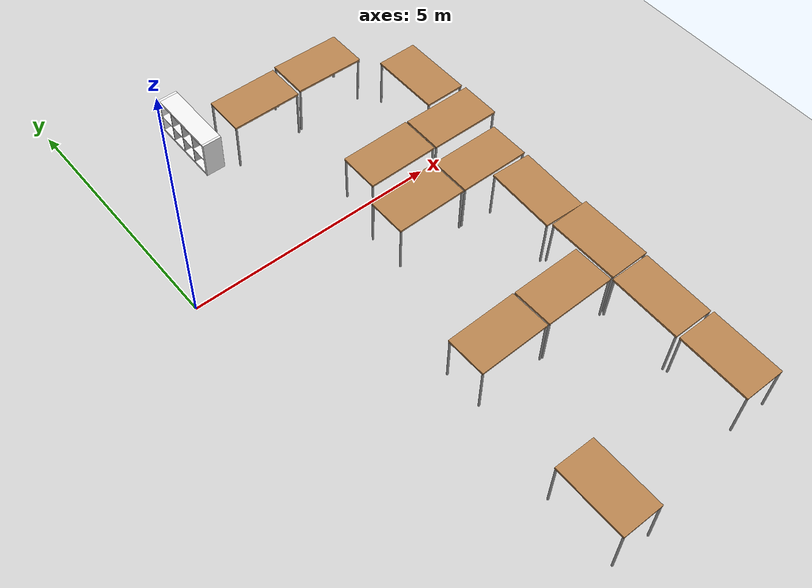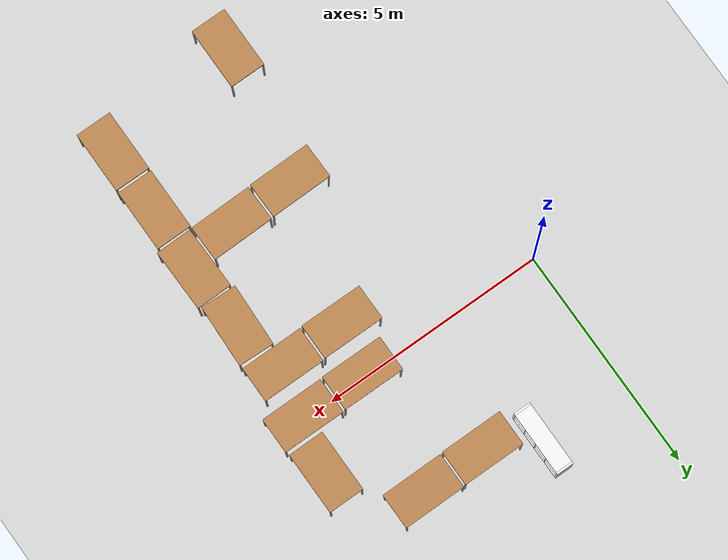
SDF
<sdf version="1.6">
 <world name="default">
  <model name="ground_plane">
   <static>1</static>
   <link name="link">
    <collision name="collision">
     <geometry><plane><normal>0 0 1</normal><size>100 100</size></plane></geometry>
     <surface><friction><ode><mu>100</mu><mu2>50</mu2></ode></friction></surface>
    </collision>
    <visual name="visual">
     <cast_shadows>0</cast_shadows>
     <geometry><plane><normal>0 0 1</normal><size>100 100</size></plane></geometry>
     <material>
      <script><uri>file://media/materials/scripts/gazebo.material</uri><name>Gazebo/Grey</name></script>
     </material>
    </visual>
   </link>
  </model>
  <model name="bookcase">
   <link name="dummy_link">
    <inertial>
     <pose>0 0 0.335152 0 -0 0</pose>
     <mass>33</mass>
     <inertia>
      <ixx>7.54617</ixx>
      <ixy>0</ixy>
      <ixz>0</ixz>
      <iyy>2.12412</iyy>
      <iyz>1.60768e-16</iyz>
      <izz>5.42205</izz>
     </inertia>
    </inertial>
    <collision name="dummy_link_fixed_joint_lump__bookcase_bottom_link_collision_1">
     <pose>0 0 0.025 0 -0 0</pose>
     <geometry><box><size>0.39 1.39 0.05</size></box></geometry>
    </collision>
    <collision name="dummy_link_fixed_joint_lump__separation_4_link_collision_2">
     <pose>0 -0.345 0.21875 0 -0 0</pose>
     <geometry><box><size>0.39 0.015 0.33</size></box></geometry>
    </collision>
    <collision name="dummy_link_fixed_joint_lump__separation_5_link_collision_3">
     <pose>0 0 0.21875 0 -0 0</pose>
     <geometry><box><size>0.39 0.015 0.33</size></box></geometry>
    </collision>
    <collision name="dummy_link_fixed_joint_lump__separation_6_link_collision_4">
     <pose>0 0.345 0.21875 0 -0 0</pose>
     <geometry><box><size>0.39 0.015 0.33</size></box></geometry>
    </collision>
    <collision name="dummy_link_fixed_joint_lump__bookcase_left_collision_5">
     <pose>0 -0.72 0.395 0 -0 0</pose>
     <geometry><box><size>0.39 0.05 0.79</size></box></geometry>
    </collision>
    <collision name="dummy_link_fixed_joint_lump__bookcase_middle_collision_6">
     <pose>0 0 0.395 0 -0 0</pose>
     <geometry><box><size>0.39 1.39 0.015</size></box></geometry>
    </collision>
    <collision name="dummy_link_fixed_joint_lump__bookcase_right_collision_7">
     <pose>0 0.72 0.395 0 -0 0</pose>
     <geometry><box><size>0.39 0.05 0.79</size></box></geometry>
    </collision>
    <collision name="dummy_link_fixed_joint_lump__bookcase_top_link_collision_8">
     <pose>0 0 0.765 0 -0 0</pose>
     <geometry><box><size>0.39 1.39 0.05</size></box></geometry>
    </collision>
    <collision name="dummy_link_fixed_joint_lump__separation_1_link_collision_9">
     <pose>0 -0.345 0.57125 0 -0 0</pose>
     <geometry><box><size>0.39 0.015 0.33</size></box></geometry>
    </collision>
    <collision name="dummy_link_fixed_joint_lump__separation_2_link_collision_10">
     <pose>0 0 0.57125 0 -0 0</pose>
     <geometry><box><size>0.39 0.015 0.33</size></box></geometry>
    </collision>
    <collision name="dummy_link_fixed_joint_lump__separation_3_link_collision_11">
     <pose>0 0.345 0.57125 0 -0 0</pose>
     <geometry><box><size>0.39 0.015 0.33</size></box></geometry>
    </collision>
    <visual name="dummy_link_fixed_joint_lump__bookcase_bottom_link_visual_1">
     <pose>0 0 0.025 0 -0 0</pose>
     <geometry><box><size>0.39 1.39 0.05</size></box></geometry>
     <material>
      <script><name>Gazebo/White</name><uri>file://media/materials/scripts/gazebo.material</uri></script>
     </material>
    </visual>
    <visual name="dummy_link_fixed_joint_lump__separation_4_link_visual_2">
     <pose>0 -0.345 0.21875 0 -0 0</pose>
     <geometry><box><size>0.39 0.015 0.3375</size></box></geometry>
    </visual>
    <visual name="dummy_link_fixed_joint_lump__separation_5_link_visual_3">
     <pose>0 0 0.21875 0 -0 0</pose>
     <geometry><box><size>0.39 0.015 0.3375</size></box></geometry>
    </visual>
    <visual name="dummy_link_fixed_joint_lump__separation_6_link_visual_4">
     <pose>0 0.345 0.21875 0 -0 0</pose>
     <geometry><box><size>0.39 0.015 0.3375</size></box></geometry>
    </visual>
    <visual name="dummy_link_fixed_joint_lump__bookcase_left_visual_5">
     <pose>0 -0.72 0.395 0 -0 0</pose>
     <geometry><box><size>0.39 0.05 0.79</size></box></geometry>
     <material>
      <script><name>Gazebo/White</name><uri>file://media/materials/scripts/gazebo.material</uri></script>
     </material>
    </visual>
    <visual name="dummy_link_fixed_joint_lump__bookcase_middle_visual_6">
     <pose>0 0 0.395 0 -0 0</pose>
     <geometry><box><size>0.39 1.39 0.015</size></box></geometry>
     <material>
      <script><name>Gazebo/White</name><uri>file://media/materials/scripts/gazebo.material</uri></script>
     </material>
    </visual>
    <visual name="dummy_link_fixed_joint_lump__bookcase_right_visual_7">
     <pose>0 0.72 0.395 0 -0 0</pose>
     <geometry><box><size>0.39 0.05 0.79</size></box></geometry>
     <material>
      <script><name>Gazebo/White</name><uri>file://media/materials/scripts/gazebo.material</uri></script>
     </material>
    </visual>
    <visual name="dummy_link_fixed_joint_lump__bookcase_top_link_visual_8">
     <pose>0 0 0.765 0 -0 0</pose>
     <geometry><box><size>0.39 1.39 0.05</size></box></geometry>
     <material>
      <script><name>Gazebo/White</name><uri>file://media/materials/scripts/gazebo.material</uri></script>
     </material>
    </visual>
    <visual name="dummy_link_fixed_joint_lump__separation_1_link_visual_9">
     <pose>0 -0.345 0.57125 0 -0 0</pose>
     <geometry><box><size>0.39 0.015 0.3375</size></box></geometry>
    </visual>
    <visual name="dummy_link_fixed_joint_lump__separation_2_link_visual_10">
     <pose>0 0 0.57125 0 -0 0</pose>
     <geometry><box><size>0.39 0.015 0.3375</size></box></geometry>
    </visual>
    <visual name="dummy_link_fixed_joint_lump__separation_3_link_visual_11">
     <pose>0 0.345 0.57125 0 -0 0</pose>
     <geometry><box><size>0.39 0.015 0.3375</size></box></geometry>
    </visual>
   </link>
   <pose>2.03773 3.11611 0 0 0 -0.003851</pose>
  </model>
  <model name="table">
   <static>0</static>
   <link name="link">
    <collision name="surface">
     <pose>0 0 1 0 -0 0</pose>
     <geometry><box><size>1.5 0.8 0.03</size></box></geometry>
     <surface><friction><ode><mu>0.6</mu><mu2>0.6</mu2></ode></friction></surface>
    </collision>
    <visual name="visual1">
     <pose>0 0 1 0 -0 0</pose>
     <geometry><box><size>1.4 0.8 0.04</size></box></geometry>
     <material>
      <script><uri>file://media/materials/scripts/gazebo.material</uri><name>Gazebo/Wood</name></script>
     </material>
    </visual>
    <collision name="front_left_leg">
     <pose>0.68 0.38 0.5 0 -0 0</pose>
     <geometry><cylinder><radius>0.02</radius><length>1</length></cylinder></geometry>
    </collision>
    <visual name="front_left_leg">
     <pose>0.68 0.38 0.5 0 -0 0</pose>
     <geometry><cylinder><radius>0.02</radius><length>1</length></cylinder></geometry>
     <material>
      <script><uri>file://media/materials/scripts/gazebo.material</uri><name>Gazebo/Grey</name></script>
     </material>
    </visual>
    <collision name="front_right_leg">
     <pose>0.68 -0.38 0.5 0 -0 0</pose>
     <geometry><cylinder><radius>0.02</radius><length>1</length></cylinder></geometry>
    </collision>
    <visual name="front_right_leg">
     <pose>0.68 -0.38 0.5 0 -0 0</pose>
     <geometry><cylinder><radius>0.02</radius><length>1</length></cylinder></geometry>
     <material>
      <script><uri>file://media/materials/scripts/gazebo.material</uri><name>Gazebo/Grey</name></script>
     </material>
    </visual>
    <collision name="back_right_leg">
     <pose>-0.68 -0.38 0.5 0 -0 0</pose>
     <geometry><cylinder><radius>0.02</radius><length>1</length></cylinder></geometry>
    </collision>
    <visual name="back_right_leg">
     <pose>-0.68 -0.38 0.5 0 -0 0</pose>
     <geometry><cylinder><radius>0.02</radius><length>1</length></cylinder></geometry>
     <material>
      <script><uri>file://media/materials/scripts/gazebo.material</uri><name>Gazebo/Grey</name></script>
     </material>
    </visual>
    <collision name="back_left_leg">
     <pose>-0.68 0.38 0.5 0 -0 0</pose>
     <geometry><cylinder><radius>0.02</radius><length>1</length></cylinder></geometry>
    </collision>
    <visual name="back_left_leg">
     <pose>-0.68 0.38 0.5 0 -0 0</pose>
     <geometry><cylinder><radius>0.02</radius><length>1</length></cylinder></geometry>
     <material>
      <script><uri>file://media/materials/scripts/gazebo.material</uri><name>Gazebo/Grey</name></script>
     </material>
    </visual>
    <inertial>
     <inertia><ixx>1</ixx><ixy>0</ixy><ixz>0</ixz><iyy>1</iyy><iyz>0</iyz><izz>1</izz></inertia>
     <mass>1</mass>
    </inertial>
   </link>
   <pose>4.5797 2.59981 0.015111 1e-06 0.021578 6e-06</pose>
  </model>
  <model name="table_clone">
   <static>0</static>
   <link name="link">
    <collision name="surface">
     <pose>0 0 1 0 -0 0</pose>
     <geometry><box><size>1.5 0.8 0.03</size></box></geometry>
     <surface><friction><ode><mu>0.6</mu><mu2>0.6</mu2></ode></friction></surface>
    </collision>
    <visual name="visual1">
     <pose>0 0 1 0 -0 0</pose>
     <geometry><box><size>1.4 0.8 0.04</size></box></geometry>
     <material>
      <script><uri>file://media/materials/scripts/gazebo.material</uri><name>Gazebo/Wood</name></script>
     </material>
    </visual>
    <collision name="front_left_leg">
     <pose>0.68 0.38 0.5 0 -0 0</pose>
     <geometry><cylinder><radius>0.02</radius><length>1</length></cylinder></geometry>
    </collision>
    <visual name="front_left_leg">
     <pose>0.68 0.38 0.5 0 -0 0</pose>
     <geometry><cylinder><radius>0.02</radius><length>1</length></cylinder></geometry>
     <material>
      <script><uri>file://media/materials/scripts/gazebo.material</uri><name>Gazebo/Grey</name></script>
     </material>
    </visual>
    <collision name="front_right_leg">
     <pose>0.68 -0.38 0.5 0 -0 0</pose>
     <geometry><cylinder><radius>0.02</radius><length>1</length></cylinder></geometry>
    </collision>
    <visual name="front_right_leg">
     <pose>0.68 -0.38 0.5 0 -0 0</pose>
     <geometry><cylinder><radius>0.02</radius><length>1</length></cylinder></geometry>
     <material>
      <script><uri>file://media/materials/scripts/gazebo.material</uri><name>Gazebo/Grey</name></script>
     </material>
    </visual>
    <collision name="back_right_leg">
     <pose>-0.68 -0.38 0.5 0 -0 0</pose>
     <geometry><cylinder><radius>0.02</radius><length>1</length></cylinder></geometry>
    </collision>
    <visual name="back_right_leg">
     <pose>-0.68 -0.38 0.5 0 -0 0</pose>
     <geometry><cylinder><radius>0.02</radius><length>1</length></cylinder></geometry>
     <material>
      <script><uri>file://media/materials/scripts/gazebo.material</uri><name>Gazebo/Grey</name></script>
     </material>
    </visual>
    <collision name="back_left_leg">
     <pose>-0.68 0.38 0.5 0 -0 0</pose>
     <geometry><cylinder><radius>0.02</radius><length>1</length></cylinder></geometry>
    </collision>
    <visual name="back_left_leg">
     <pose>-0.68 0.38 0.5 0 -0 0</pose>
     <geometry><cylinder><radius>0.02</radius><length>1</length></cylinder></geometry>
     <material>
      <script><uri>file://media/materials/scripts/gazebo.material</uri><name>Gazebo/Grey</name></script>
     </material>
    </visual>
    <inertial>
     <inertia><ixx>1</ixx><ixy>0</ixy><ixz>0</ixz><iyy>1</iyy><iyz>0</iyz><izz>1</izz></inertia>
     <mass>1</mass>
    </inertial>
   </link>
   <pose>3.15046 2.58459 3e-06 1e-06 5e-06 5e-06</pose>
  </model>
  <model name="table_clone_0">
   <static>0</static>
   <link name="link">
    <collision name="surface">
     <pose>0 0 1 0 -0 0</pose>
     <geometry><box><size>1.5 0.8 0.03</size></box></geometry>
     <surface><friction><ode><mu>0.6</mu><mu2>0.6</mu2></ode></friction></surface>
    </collision>
    <visual name="visual1">
     <pose>0 0 1 0 -0 0</pose>
     <geometry><box><size>1.4 0.8 0.04</size></box></geometry>
     <material>
      <script><uri>file://media/materials/scripts/gazebo.material</uri><name>Gazebo/Wood</name></script>
     </material>
    </visual>
    <collision name="front_left_leg">
     <pose>0.68 0.38 0.5 0 -0 0</pose>
     <geometry><cylinder><radius>0.02</radius><length>1</length></cylinder></geometry>
    </collision>
    <visual name="front_left_leg">
     <pose>0.68 0.38 0.5 0 -0 0</pose>
     <geometry><cylinder><radius>0.02</radius><length>1</length></cylinder></geometry>
     <material>
      <script><uri>file://media/materials/scripts/gazebo.material</uri><name>Gazebo/Grey</name></script>
     </material>
    </visual>
    <collision name="front_right_leg">
     <pose>0.68 -0.38 0.5 0 -0 0</pose>
     <geometry><cylinder><radius>0.02</radius><length>1</length></cylinder></geometry>
    </collision>
    <visual name="front_right_leg">
     <pose>0.68 -0.38 0.5 0 -0 0</pose>
     <geometry><cylinder><radius>0.02</radius><length>1</length></cylinder></geometry>
     <material>
      <script><uri>file://media/materials/scripts/gazebo.material</uri><name>Gazebo/Grey</name></script>
     </material>
    </visual>
    <collision name="back_right_leg">
     <pose>-0.68 -0.38 0.5 0 -0 0</pose>
     <geometry><cylinder><radius>0.02</radius><length>1</length></cylinder></geometry>
    </collision>
    <visual name="back_right_leg">
     <pose>-0.68 -0.38 0.5 0 -0 0</pose>
     <geometry><cylinder><radius>0.02</radius><length>1</length></cylinder></geometry>
     <material>
      <script><uri>file://media/materials/scripts/gazebo.material</uri><name>Gazebo/Grey</name></script>
     </material>
    </visual>
    <collision name="back_left_leg">
     <pose>-0.68 0.38 0.5 0 -0 0</pose>
     <geometry><cylinder><radius>0.02</radius><length>1</length></cylinder></geometry>
    </collision>
    <visual name="back_left_leg">
     <pose>-0.68 0.38 0.5 0 -0 0</pose>
     <geometry><cylinder><radius>0.02</radius><length>1</length></cylinder></geometry>
     <material>
      <script><uri>file://media/materials/scripts/gazebo.material</uri><name>Gazebo/Grey</name></script>
     </material>
    </visual>
    <inertial>
     <inertia><ixx>1</ixx><ixy>0</ixy><ixz>0</ixz><iyy>1</iyy><iyz>0</iyz><izz>1</izz></inertia>
     <mass>1</mass>
    </inertial>
   </link>
   <pose>5.67387 0.001595 0 -6e-06 -4e-06 -0.002721</pose>
  </model>
  <model name="table_clone_1">
   <static>0</static>
   <link name="link">
    <collision name="surface">
     <pose>0 0 1 0 -0 0</pose>
     <geometry><box><size>1.5 0.8 0.03</size></box></geometry>
     <surface><friction><ode><mu>0.6</mu><mu2>0.6</mu2></ode></friction></surface>
    </collision>
    <visual name="visual1">
     <pose>0 0 1 0 -0 0</pose>
     <geometry><box><size>1.4 0.8 0.04</size></box></geometry>
     <material>
      <script><uri>file://media/materials/scripts/gazebo.material</uri><name>Gazebo/Wood</name></script>
     </material>
    </visual>
    <collision name="front_left_leg">
     <pose>0.68 0.38 0.5 0 -0 0</pose>
     <geometry><cylinder><radius>0.02</radius><length>1</length></cylinder></geometry>
    </collision>
    <visual name="front_left_leg">
     <pose>0.68 0.38 0.5 0 -0 0</pose>
     <geometry><cylinder><radius>0.02</radius><length>1</length></cylinder></geometry>
     <material>
      <script><uri>file://media/materials/scripts/gazebo.material</uri><name>Gazebo/Grey</name></script>
     </material>
    </visual>
    <collision name="front_right_leg">
     <pose>0.68 -0.38 0.5 0 -0 0</pose>
     <geometry><cylinder><radius>0.02</radius><length>1</length></cylinder></geometry>
    </collision>
    <visual name="front_right_leg">
     <pose>0.68 -0.38 0.5 0 -0 0</pose>
     <geometry><cylinder><radius>0.02</radius><length>1</length></cylinder></geometry>
     <material>
      <script><uri>file://media/materials/scripts/gazebo.material</uri><name>Gazebo/Grey</name></script>
     </material>
    </visual>
    <collision name="back_right_leg">
     <pose>-0.68 -0.38 0.5 0 -0 0</pose>
     <geometry><cylinder><radius>0.02</radius><length>1</length></cylinder></geometry>
    </collision>
    <visual name="back_right_leg">
     <pose>-0.68 -0.38 0.5 0 -0 0</pose>
     <geometry><cylinder><radius>0.02</radius><length>1</length></cylinder></geometry>
     <material>
      <script><uri>file://media/materials/scripts/gazebo.material</uri><name>Gazebo/Grey</name></script>
     </material>
    </visual>
    <collision name="back_left_leg">
     <pose>-0.68 0.38 0.5 0 -0 0</pose>
     <geometry><cylinder><radius>0.02</radius><length>1</length></cylinder></geometry>
    </collision>
    <visual name="back_left_leg">
     <pose>-0.68 0.38 0.5 0 -0 0</pose>
     <geometry><cylinder><radius>0.02</radius><length>1</length></cylinder></geometry>
     <material>
      <script><uri>file://media/materials/scripts/gazebo.material</uri><name>Gazebo/Grey</name></script>
     </material>
    </visual>
    <inertial>
     <inertia><ixx>1</ixx><ixy>0</ixy><ixz>0</ixz><iyy>1</iyy><iyz>0</iyz><izz>1</izz></inertia>
     <mass>1</mass>
    </inertial>
   </link>
   <pose>4.24461 -0.004796 0.015108 -2e-06 -0.021582 -0.002718</pose>
  </model>
  <model name="table_clone_2">
   <static>0</static>
   <link name="link">
    <collision name="surface">
     <pose>0 0 1 0 -0 0</pose>
     <geometry><box><size>1.5 0.8 0.03</size></box></geometry>
     <surface><friction><ode><mu>0.6</mu><mu2>0.6</mu2></ode></friction></surface>
    </collision>
    <visual name="visual1">
     <pose>0 0 1 0 -0 0</pose>
     <geometry><box><size>1.4 0.8 0.04</size></box></geometry>
     <material>
      <script><uri>file://media/materials/scripts/gazebo.material</uri><name>Gazebo/Wood</name></script>
     </material>
    </visual>
    <collision name="front_left_leg">
     <pose>0.68 0.38 0.5 0 -0 0</pose>
     <geometry><cylinder><radius>0.02</radius><length>1</length></cylinder></geometry>
    </collision>
    <visual name="front_left_leg">
     <pose>0.68 0.38 0.5 0 -0 0</pose>
     <geometry><cylinder><radius>0.02</radius><length>1</length></cylinder></geometry>
     <material>
      <script><uri>file://media/materials/scripts/gazebo.material</uri><name>Gazebo/Grey</name></script>
     </material>
    </visual>
    <collision name="front_right_leg">
     <pose>0.68 -0.38 0.5 0 -0 0</pose>
     <geometry><cylinder><radius>0.02</radius><length>1</length></cylinder></geometry>
    </collision>
    <visual name="front_right_leg">
     <pose>0.68 -0.38 0.5 0 -0 0</pose>
     <geometry><cylinder><radius>0.02</radius><length>1</length></cylinder></geometry>
     <material>
      <script><uri>file://media/materials/scripts/gazebo.material</uri><name>Gazebo/Grey</name></script>
     </material>
    </visual>
    <collision name="back_right_leg">
     <pose>-0.68 -0.38 0.5 0 -0 0</pose>
     <geometry><cylinder><radius>0.02</radius><length>1</length></cylinder></geometry>
    </collision>
    <visual name="back_right_leg">
     <pose>-0.68 -0.38 0.5 0 -0 0</pose>
     <geometry><cylinder><radius>0.02</radius><length>1</length></cylinder></geometry>
     <material>
      <script><uri>file://media/materials/scripts/gazebo.material</uri><name>Gazebo/Grey</name></script>
     </material>
    </visual>
    <collision name="back_left_leg">
     <pose>-0.68 0.38 0.5 0 -0 0</pose>
     <geometry><cylinder><radius>0.02</radius><length>1</length></cylinder></geometry>
    </collision>
    <visual name="back_left_leg">
     <pose>-0.68 0.38 0.5 0 -0 0</pose>
     <geometry><cylinder><radius>0.02</radius><length>1</length></cylinder></geometry>
     <material>
      <script><uri>file://media/materials/scripts/gazebo.material</uri><name>Gazebo/Grey</name></script>
     </material>
    </visual>
    <inertial>
     <inertia><ixx>1</ixx><ixy>0</ixy><ixz>0</ixz><iyy>1</iyy><iyz>0</iyz><izz>1</izz></inertia>
     <mass>1</mass>
    </inertial>
   </link>
   <pose>5.94644 1.1813 -2e-06 0 1e-06 -1.56858</pose>
  </model>
  <model name="table_0">
   <static>0</static>
   <link name="link">
    <collision name="surface">
     <pose>0 0 1 0 -0 0</pose>
     <geometry><box><size>1.5 0.8 0.03</size></box></geometry>
     <surface><friction><ode><mu>0.6</mu><mu2>0.6</mu2></ode></friction></surface>
    </collision>
    <visual name="visual1">
     <pose>0 0 1 0 -0 0</pose>
     <geometry><box><size>1.4 0.8 0.04</size></box></geometry>
     <material>
      <script><uri>file://media/materials/scripts/gazebo.material</uri><name>Gazebo/Wood</name></script>
     </material>
    </visual>
    <collision name="front_left_leg">
     <pose>0.68 0.38 0.5 0 -0 0</pose>
     <geometry><cylinder><radius>0.02</radius><length>1</length></cylinder></geometry>
    </collision>
    <visual name="front_left_leg">
     <pose>0.68 0.38 0.5 0 -0 0</pose>
     <geometry><cylinder><radius>0.02</radius><length>1</length></cylinder></geometry>
     <material>
      <script><uri>file://media/materials/scripts/gazebo.material</uri><name>Gazebo/Grey</name></script>
     </material>
    </visual>
    <collision name="front_right_leg">
     <pose>0.68 -0.38 0.5 0 -0 0</pose>
     <geometry><cylinder><radius>0.02</radius><length>1</length></cylinder></geometry>
    </collision>
    <visual name="front_right_leg">
     <pose>0.68 -0.38 0.5 0 -0 0</pose>
     <geometry><cylinder><radius>0.02</radius><length>1</length></cylinder></geometry>
     <material>
      <script><uri>file://media/materials/scripts/gazebo.material</uri><name>Gazebo/Grey</name></script>
     </material>
    </visual>
    <collision name="back_right_leg">
     <pose>-0.68 -0.38 0.5 0 -0 0</pose>
     <geometry><cylinder><radius>0.02</radius><length>1</length></cylinder></geometry>
    </collision>
    <visual name="back_right_leg">
     <pose>-0.68 -0.38 0.5 0 -0 0</pose>
     <geometry><cylinder><radius>0.02</radius><length>1</length></cylinder></geometry>
     <material>
      <script><uri>file://media/materials/scripts/gazebo.material</uri><name>Gazebo/Grey</name></script>
     </material>
    </visual>
    <collision name="back_left_leg">
     <pose>-0.68 0.38 0.5 0 -0 0</pose>
     <geometry><cylinder><radius>0.02</radius><length>1</length></cylinder></geometry>
    </collision>
    <visual name="back_left_leg">
     <pose>-0.68 0.38 0.5 0 -0 0</pose>
     <geometry><cylinder><radius>0.02</radius><length>1</length></cylinder></geometry>
     <material>
      <script><uri>file://media/materials/scripts/gazebo.material</uri><name>Gazebo/Grey</name></script>
     </material>
    </visual>
    <inertial>
     <inertia><ixx>1</ixx><ixy>0</ixy><ixz>0</ixz><iyy>1</iyy><iyz>0</iyz><izz>1</izz></inertia>
     <mass>1</mass>
    </inertial>
   </link>
   <pose>5.41247 -1.0623 0 -6e-06 -4e-06 -8e-06</pose>
  </model>
  <model name="table_0_clone">
   <static>0</static>
   <link name="link">
    <collision name="surface">
     <pose>0 0 1 0 -0 0</pose>
     <geometry><box><size>1.5 0.8 0.03</size></box></geometry>
     <surface><friction><ode><mu>0.6</mu><mu2>0.6</mu2></ode></friction></surface>
    </collision>
    <visual name="visual1">
     <pose>0 0 1 0 -0 0</pose>
     <geometry><box><size>1.4 0.8 0.04</size></box></geometry>
     <material>
      <script><uri>file://media/materials/scripts/gazebo.material</uri><name>Gazebo/Wood</name></script>
     </material>
    </visual>
    <collision name="front_left_leg">
     <pose>0.68 0.38 0.5 0 -0 0</pose>
     <geometry><cylinder><radius>0.02</radius><length>1</length></cylinder></geometry>
    </collision>
    <visual name="front_left_leg">
     <pose>0.68 0.38 0.5 0 -0 0</pose>
     <geometry><cylinder><radius>0.02</radius><length>1</length></cylinder></geometry>
     <material>
      <script><uri>file://media/materials/scripts/gazebo.material</uri><name>Gazebo/Grey</name></script>
     </material>
    </visual>
    <collision name="front_right_leg">
     <pose>0.68 -0.38 0.5 0 -0 0</pose>
     <geometry><cylinder><radius>0.02</radius><length>1</length></cylinder></geometry>
    </collision>
    <visual name="front_right_leg">
     <pose>0.68 -0.38 0.5 0 -0 0</pose>
     <geometry><cylinder><radius>0.02</radius><length>1</length></cylinder></geometry>
     <material>
      <script><uri>file://media/materials/scripts/gazebo.material</uri><name>Gazebo/Grey</name></script>
     </material>
    </visual>
    <collision name="back_right_leg">
     <pose>-0.68 -0.38 0.5 0 -0 0</pose>
     <geometry><cylinder><radius>0.02</radius><length>1</length></cylinder></geometry>
    </collision>
    <visual name="back_right_leg">
     <pose>-0.68 -0.38 0.5 0 -0 0</pose>
     <geometry><cylinder><radius>0.02</radius><length>1</length></cylinder></geometry>
     <material>
      <script><uri>file://media/materials/scripts/gazebo.material</uri><name>Gazebo/Grey</name></script>
     </material>
    </visual>
    <collision name="back_left_leg">
     <pose>-0.68 0.38 0.5 0 -0 0</pose>
     <geometry><cylinder><radius>0.02</radius><length>1</length></cylinder></geometry>
    </collision>
    <visual name="back_left_leg">
     <pose>-0.68 0.38 0.5 0 -0 0</pose>
     <geometry><cylinder><radius>0.02</radius><length>1</length></cylinder></geometry>
     <material>
      <script><uri>file://media/materials/scripts/gazebo.material</uri><name>Gazebo/Grey</name></script>
     </material>
    </visual>
    <inertial>
     <inertia><ixx>1</ixx><ixy>0</ixy><ixz>0</ixz><iyy>1</iyy><iyz>0</iyz><izz>1</izz></inertia>
     <mass>1</mass>
    </inertial>
   </link>
   <pose>3.98324 -1.07819 0.015106 -4e-06 -0.02158 -6e-06</pose>
  </model>
  <model name="table_0_clone_0">
   <static>0</static>
   <link name="link">
    <collision name="surface">
     <pose>0 0 1 0 -0 0</pose>
     <geometry><box><size>1.5 0.8 0.03</size></box></geometry>
     <surface><friction><ode><mu>0.6</mu><mu2>0.6</mu2></ode></friction></surface>
    </collision>
    <visual name="visual1">
     <pose>0 0 1 0 -0 0</pose>
     <geometry><box><size>1.4 0.8 0.04</size></box></geometry>
     <material>
      <script><uri>file://media/materials/scripts/gazebo.material</uri><name>Gazebo/Wood</name></script>
     </material>
    </visual>
    <collision name="front_left_leg">
     <pose>0.68 0.38 0.5 0 -0 0</pose>
     <geometry><cylinder><radius>0.02</radius><length>1</length></cylinder></geometry>
    </collision>
    <visual name="front_left_leg">
     <pose>0.68 0.38 0.5 0 -0 0</pose>
     <geometry><cylinder><radius>0.02</radius><length>1</length></cylinder></geometry>
     <material>
      <script><uri>file://media/materials/scripts/gazebo.material</uri><name>Gazebo/Grey</name></script>
     </material>
    </visual>
    <collision name="front_right_leg">
     <pose>0.68 -0.38 0.5 0 -0 0</pose>
     <geometry><cylinder><radius>0.02</radius><length>1</length></cylinder></geometry>
    </collision>
    <visual name="front_right_leg">
     <pose>0.68 -0.38 0.5 0 -0 0</pose>
     <geometry><cylinder><radius>0.02</radius><length>1</length></cylinder></geometry>
     <material>
      <script><uri>file://media/materials/scripts/gazebo.material</uri><name>Gazebo/Grey</name></script>
     </material>
    </visual>
    <collision name="back_right_leg">
     <pose>-0.68 -0.38 0.5 0 -0 0</pose>
     <geometry><cylinder><radius>0.02</radius><length>1</length></cylinder></geometry>
    </collision>
    <visual name="back_right_leg">
     <pose>-0.68 -0.38 0.5 0 -0 0</pose>
     <geometry><cylinder><radius>0.02</radius><length>1</length></cylinder></geometry>
     <material>
      <script><uri>file://media/materials/scripts/gazebo.material</uri><name>Gazebo/Grey</name></script>
     </material>
    </visual>
    <collision name="back_left_leg">
     <pose>-0.68 0.38 0.5 0 -0 0</pose>
     <geometry><cylinder><radius>0.02</radius><length>1</length></cylinder></geometry>
    </collision>
    <visual name="back_left_leg">
     <pose>-0.68 0.38 0.5 0 -0 0</pose>
     <geometry><cylinder><radius>0.02</radius><length>1</length></cylinder></geometry>
     <material>
      <script><uri>file://media/materials/scripts/gazebo.material</uri><name>Gazebo/Grey</name></script>
     </material>
    </visual>
    <inertial>
     <inertia><ixx>1</ixx><ixy>0</ixy><ixz>0</ixz><iyy>1</iyy><iyz>0</iyz><izz>1</izz></inertia>
     <mass>1</mass>
    </inertial>
   </link>
   <pose>5.69797 -2.22621 0 0 0 -1.60682</pose>
  </model>
  <model name="table_0_clone_0_clone">
   <static>0</static>
   <link name="link">
    <collision name="surface">
     <pose>0 0 1 0 -0 0</pose>
     <geometry><box><size>1.5 0.8 0.03</size></box></geometry>
     <surface><friction><ode><mu>0.6</mu><mu2>0.6</mu2></ode></friction></surface>
    </collision>
    <visual name="visual1">
     <pose>0 0 1 0 -0 0</pose>
     <geometry><box><size>1.4 0.8 0.04</size></box></geometry>
     <material>
      <script><uri>file://media/materials/scripts/gazebo.material</uri><name>Gazebo/Wood</name></script>
     </material>
    </visual>
    <collision name="front_left_leg">
     <pose>0.68 0.38 0.5 0 -0 0</pose>
     <geometry><cylinder><radius>0.02</radius><length>1</length></cylinder></geometry>
    </collision>
    <visual name="front_left_leg">
     <pose>0.68 0.38 0.5 0 -0 0</pose>
     <geometry><cylinder><radius>0.02</radius><length>1</length></cylinder></geometry>
     <material>
      <script><uri>file://media/materials/scripts/gazebo.material</uri><name>Gazebo/Grey</name></script>
     </material>
    </visual>
    <collision name="front_right_leg">
     <pose>0.68 -0.38 0.5 0 -0 0</pose>
     <geometry><cylinder><radius>0.02</radius><length>1</length></cylinder></geometry>
    </collision>
    <visual name="front_right_leg">
     <pose>0.68 -0.38 0.5 0 -0 0</pose>
     <geometry><cylinder><radius>0.02</radius><length>1</length></cylinder></geometry>
     <material>
      <script><uri>file://media/materials/scripts/gazebo.material</uri><name>Gazebo/Grey</name></script>
     </material>
    </visual>
    <collision name="back_right_leg">
     <pose>-0.68 -0.38 0.5 0 -0 0</pose>
     <geometry><cylinder><radius>0.02</radius><length>1</length></cylinder></geometry>
    </collision>
    <visual name="back_right_leg">
     <pose>-0.68 -0.38 0.5 0 -0 0</pose>
     <geometry><cylinder><radius>0.02</radius><length>1</length></cylinder></geometry>
     <material>
      <script><uri>file://media/materials/scripts/gazebo.material</uri><name>Gazebo/Grey</name></script>
     </material>
    </visual>
    <collision name="back_left_leg">
     <pose>-0.68 0.38 0.5 0 -0 0</pose>
     <geometry><cylinder><radius>0.02</radius><length>1</length></cylinder></geometry>
    </collision>
    <visual name="back_left_leg">
     <pose>-0.68 0.38 0.5 0 -0 0</pose>
     <geometry><cylinder><radius>0.02</radius><length>1</length></cylinder></geometry>
     <material>
      <script><uri>file://media/materials/scripts/gazebo.material</uri><name>Gazebo/Grey</name></script>
     </material>
    </visual>
    <inertial>
     <inertia><ixx>1</ixx><ixy>0</ixy><ixz>0</ixz><iyy>1</iyy><iyz>0</iyz><izz>1</izz></inertia>
     <mass>1</mass>
    </inertial>
   </link>
   <pose>5.75087 -3.63736 0.01553 0.000691 0.021813 -1.5548</pose>
  </model>
  <model name="table_0_clone_0_clone_clone">
   <static>0</static>
   <link name="link">
    <collision name="surface">
     <pose>0 0 1 0 -0 0</pose>
     <geometry><box><size>1.5 0.8 0.03</size></box></geometry>
     <surface><friction><ode><mu>0.6</mu><mu2>0.6</mu2></ode></friction></surface>
    </collision>
    <visual name="visual1">
     <pose>0 0 1 0 -0 0</pose>
     <geometry><box><size>1.4 0.8 0.04</size></box></geometry>
     <material>
      <script><uri>file://media/materials/scripts/gazebo.material</uri><name>Gazebo/Wood</name></script>
     </material>
    </visual>
    <collision name="front_left_leg">
     <pose>0.68 0.38 0.5 0 -0 0</pose>
     <geometry><cylinder><radius>0.02</radius><length>1</length></cylinder></geometry>
    </collision>
    <visual name="front_left_leg">
     <pose>0.68 0.38 0.5 0 -0 0</pose>
     <geometry><cylinder><radius>0.02</radius><length>1</length></cylinder></geometry>
     <material>
      <script><uri>file://media/materials/scripts/gazebo.material</uri><name>Gazebo/Grey</name></script>
     </material>
    </visual>
    <collision name="front_right_leg">
     <pose>0.68 -0.38 0.5 0 -0 0</pose>
     <geometry><cylinder><radius>0.02</radius><length>1</length></cylinder></geometry>
    </collision>
    <visual name="front_right_leg">
     <pose>0.68 -0.38 0.5 0 -0 0</pose>
     <geometry><cylinder><radius>0.02</radius><length>1</length></cylinder></geometry>
     <material>
      <script><uri>file://media/materials/scripts/gazebo.material</uri><name>Gazebo/Grey</name></script>
     </material>
    </visual>
    <collision name="back_right_leg">
     <pose>-0.68 -0.38 0.5 0 -0 0</pose>
     <geometry><cylinder><radius>0.02</radius><length>1</length></cylinder></geometry>
    </collision>
    <visual name="back_right_leg">
     <pose>-0.68 -0.38 0.5 0 -0 0</pose>
     <geometry><cylinder><radius>0.02</radius><length>1</length></cylinder></geometry>
     <material>
      <script><uri>file://media/materials/scripts/gazebo.material</uri><name>Gazebo/Grey</name></script>
     </material>
    </visual>
    <collision name="back_left_leg">
     <pose>-0.68 0.38 0.5 0 -0 0</pose>
     <geometry><cylinder><radius>0.02</radius><length>1</length></cylinder></geometry>
    </collision>
    <visual name="back_left_leg">
     <pose>-0.68 0.38 0.5 0 -0 0</pose>
     <geometry><cylinder><radius>0.02</radius><length>1</length></cylinder></geometry>
     <material>
      <script><uri>file://media/materials/scripts/gazebo.material</uri><name>Gazebo/Grey</name></script>
     </material>
    </visual>
    <inertial>
     <inertia><ixx>1</ixx><ixy>0</ixy><ixz>0</ixz><iyy>1</iyy><iyz>0</iyz><izz>1</izz></inertia>
     <mass>1</mass>
    </inertial>
   </link>
   <pose>5.70672 -5.08238 0.014759 -0 0.021086 -1.57269</pose>
  </model>
  <model name="table_0_clone_0_clone_clone_0">
   <static>0</static>
   <link name="link">
    <collision name="surface">
     <pose>0 0 1 0 -0 0</pose>
     <geometry><box><size>1.5 0.8 0.03</size></box></geometry>
     <surface><friction><ode><mu>0.6</mu><mu2>0.6</mu2></ode></friction></surface>
    </collision>
    <visual name="visual1">
     <pose>0 0 1 0 -0 0</pose>
     <geometry><box><size>1.4 0.8 0.04</size></box></geometry>
     <material>
      <script><uri>file://media/materials/scripts/gazebo.material</uri><name>Gazebo/Wood</name></script>
     </material>
    </visual>
    <collision name="front_left_leg">
     <pose>0.68 0.38 0.5 0 -0 0</pose>
     <geometry><cylinder><radius>0.02</radius><length>1</length></cylinder></geometry>
    </collision>
    <visual name="front_left_leg">
     <pose>0.68 0.38 0.5 0 -0 0</pose>
     <geometry><cylinder><radius>0.02</radius><length>1</length></cylinder></geometry>
     <material>
      <script><uri>file://media/materials/scripts/gazebo.material</uri><name>Gazebo/Grey</name></script>
     </material>
    </visual>
    <collision name="front_right_leg">
     <pose>0.68 -0.38 0.5 0 -0 0</pose>
     <geometry><cylinder><radius>0.02</radius><length>1</length></cylinder></geometry>
    </collision>
    <visual name="front_right_leg">
     <pose>0.68 -0.38 0.5 0 -0 0</pose>
     <geometry><cylinder><radius>0.02</radius><length>1</length></cylinder></geometry>
     <material>
      <script><uri>file://media/materials/scripts/gazebo.material</uri><name>Gazebo/Grey</name></script>
     </material>
    </visual>
    <collision name="back_right_leg">
     <pose>-0.68 -0.38 0.5 0 -0 0</pose>
     <geometry><cylinder><radius>0.02</radius><length>1</length></cylinder></geometry>
    </collision>
    <visual name="back_right_leg">
     <pose>-0.68 -0.38 0.5 0 -0 0</pose>
     <geometry><cylinder><radius>0.02</radius><length>1</length></cylinder></geometry>
     <material>
      <script><uri>file://media/materials/scripts/gazebo.material</uri><name>Gazebo/Grey</name></script>
     </material>
    </visual>
    <collision name="back_left_leg">
     <pose>-0.68 0.38 0.5 0 -0 0</pose>
     <geometry><cylinder><radius>0.02</radius><length>1</length></cylinder></geometry>
    </collision>
    <visual name="back_left_leg">
     <pose>-0.68 0.38 0.5 0 -0 0</pose>
     <geometry><cylinder><radius>0.02</radius><length>1</length></cylinder></geometry>
     <material>
      <script><uri>file://media/materials/scripts/gazebo.material</uri><name>Gazebo/Grey</name></script>
     </material>
    </visual>
    <inertial>
     <inertia><ixx>1</ixx><ixy>0</ixy><ixz>0</ixz><iyy>1</iyy><iyz>0</iyz><izz>1</izz></inertia>
     <mass>1</mass>
    </inertial>
   </link>
   <pose>5.70841 -6.53311 0.014476 -1e-06 0.02068 -1.57269</pose>
  </model>
  <model name="table_0_clone_0_clone_clone_1">
   <static>0</static>
   <link name="link">
    <collision name="surface">
     <pose>0 0 1 0 -0 0</pose>
     <geometry><box><size>1.5 0.8 0.03</size></box></geometry>
     <surface><friction><ode><mu>0.6</mu><mu2>0.6</mu2></ode></friction></surface>
    </collision>
    <visual name="visual1">
     <pose>0 0 1 0 -0 0</pose>
     <geometry><box><size>1.4 0.8 0.04</size></box></geometry>
     <material>
      <script><uri>file://media/materials/scripts/gazebo.material</uri><name>Gazebo/Wood</name></script>
     </material>
    </visual>
    <collision name="front_left_leg">
     <pose>0.68 0.38 0.5 0 -0 0</pose>
     <geometry><cylinder><radius>0.02</radius><length>1</length></cylinder></geometry>
    </collision>
    <visual name="front_left_leg">
     <pose>0.68 0.38 0.5 0 -0 0</pose>
     <geometry><cylinder><radius>0.02</radius><length>1</length></cylinder></geometry>
     <material>
      <script><uri>file://media/materials/scripts/gazebo.material</uri><name>Gazebo/Grey</name></script>
     </material>
    </visual>
    <collision name="front_right_leg">
     <pose>0.68 -0.38 0.5 0 -0 0</pose>
     <geometry><cylinder><radius>0.02</radius><length>1</length></cylinder></geometry>
    </collision>
    <visual name="front_right_leg">
     <pose>0.68 -0.38 0.5 0 -0 0</pose>
     <geometry><cylinder><radius>0.02</radius><length>1</length></cylinder></geometry>
     <material>
      <script><uri>file://media/materials/scripts/gazebo.material</uri><name>Gazebo/Grey</name></script>
     </material>
    </visual>
    <collision name="back_right_leg">
     <pose>-0.68 -0.38 0.5 0 -0 0</pose>
     <geometry><cylinder><radius>0.02</radius><length>1</length></cylinder></geometry>
    </collision>
    <visual name="back_right_leg">
     <pose>-0.68 -0.38 0.5 0 -0 0</pose>
     <geometry><cylinder><radius>0.02</radius><length>1</length></cylinder></geometry>
     <material>
      <script><uri>file://media/materials/scripts/gazebo.material</uri><name>Gazebo/Grey</name></script>
     </material>
    </visual>
    <collision name="back_left_leg">
     <pose>-0.68 0.38 0.5 0 -0 0</pose>
     <geometry><cylinder><radius>0.02</radius><length>1</length></cylinder></geometry>
    </collision>
    <visual name="back_left_leg">
     <pose>-0.68 0.38 0.5 0 -0 0</pose>
     <geometry><cylinder><radius>0.02</radius><length>1</length></cylinder></geometry>
     <material>
      <script><uri>file://media/materials/scripts/gazebo.material</uri><name>Gazebo/Grey</name></script>
     </material>
    </visual>
    <inertial>
     <inertia><ixx>1</ixx><ixy>0</ixy><ixz>0</ixz><iyy>1</iyy><iyz>0</iyz><izz>1</izz></inertia>
     <mass>1</mass>
    </inertial>
   </link>
   <pose>2.60823 -6.96246 -9e-06 0 -1e-06 -1.57084</pose>
  </model>
  <model name="table_0_clone_clone">
   <static>0</static>
   <link name="link">
    <collision name="surface">
     <pose>0 0 1 0 -0 0</pose>
     <geometry><box><size>1.5 0.8 0.03</size></box></geometry>
     <surface><friction><ode><mu>0.6</mu><mu2>0.6</mu2></ode></friction></surface>
    </collision>
    <visual name="visual1">
     <pose>0 0 1 0 -0 0</pose>
     <geometry><box><size>1.4 0.8 0.04</size></box></geometry>
     <material>
      <script><uri>file://media/materials/scripts/gazebo.material</uri><name>Gazebo/Wood</name></script>
     </material>
    </visual>
    <collision name="front_left_leg">
     <pose>0.68 0.38 0.5 0 -0 0</pose>
     <geometry><cylinder><radius>0.02</radius><length>1</length></cylinder></geometry>
    </collision>
    <visual name="front_left_leg">
     <pose>0.68 0.38 0.5 0 -0 0</pose>
     <geometry><cylinder><radius>0.02</radius><length>1</length></cylinder></geometry>
     <material>
      <script><uri>file://media/materials/scripts/gazebo.material</uri><name>Gazebo/Grey</name></script>
     </material>
    </visual>
    <collision name="front_right_leg">
     <pose>0.68 -0.38 0.5 0 -0 0</pose>
     <geometry><cylinder><radius>0.02</radius><length>1</length></cylinder></geometry>
    </collision>
    <visual name="front_right_leg">
     <pose>0.68 -0.38 0.5 0 -0 0</pose>
     <geometry><cylinder><radius>0.02</radius><length>1</length></cylinder></geometry>
     <material>
      <script><uri>file://media/materials/scripts/gazebo.material</uri><name>Gazebo/Grey</name></script>
     </material>
    </visual>
    <collision name="back_right_leg">
     <pose>-0.68 -0.38 0.5 0 -0 0</pose>
     <geometry><cylinder><radius>0.02</radius><length>1</length></cylinder></geometry>
    </collision>
    <visual name="back_right_leg">
     <pose>-0.68 -0.38 0.5 0 -0 0</pose>
     <geometry><cylinder><radius>0.02</radius><length>1</length></cylinder></geometry>
     <material>
      <script><uri>file://media/materials/scripts/gazebo.material</uri><name>Gazebo/Grey</name></script>
     </material>
    </visual>
    <collision name="back_left_leg">
     <pose>-0.68 0.38 0.5 0 -0 0</pose>
     <geometry><cylinder><radius>0.02</radius><length>1</length></cylinder></geometry>
    </collision>
    <visual name="back_left_leg">
     <pose>-0.68 0.38 0.5 0 -0 0</pose>
     <geometry><cylinder><radius>0.02</radius><length>1</length></cylinder></geometry>
     <material>
      <script><uri>file://media/materials/scripts/gazebo.material</uri><name>Gazebo/Grey</name></script>
     </material>
    </visual>
    <inertial>
     <inertia><ixx>1</ixx><ixy>0</ixy><ixz>0</ixz><iyy>1</iyy><iyz>0</iyz><izz>1</izz></inertia>
     <mass>1</mass>
    </inertial>
   </link>
   <pose>4.60552 -3.98153 -2.1e-05 0 1e-06 0.015968</pose>
  </model>
  <model name="table_0_clone_clone_0">
   <static>0</static>
   <link name="link">
    <collision name="surface">
     <pose>0 0 1 0 -0 0</pose>
     <geometry><box><size>1.5 0.8 0.03</size></box></geometry>
     <surface><friction><ode><mu>0.6</mu><mu2>0.6</mu2></ode></friction></surface>
    </collision>
    <visual name="visual1">
     <pose>0 0 1 0 -0 0</pose>
     <geometry><box><size>1.4 0.8 0.04</size></box></geometry>
     <material>
      <script><uri>file://media/materials/scripts/gazebo.material</uri><name>Gazebo/Wood</name></script>
     </material>
    </visual>
    <collision name="front_left_leg">
     <pose>0.68 0.38 0.5 0 -0 0</pose>
     <geometry><cylinder><radius>0.02</radius><length>1</length></cylinder></geometry>
    </collision>
    <visual name="front_left_leg">
     <pose>0.68 0.38 0.5 0 -0 0</pose>
     <geometry><cylinder><radius>0.02</radius><length>1</length></cylinder></geometry>
     <material>
      <script><uri>file://media/materials/scripts/gazebo.material</uri><name>Gazebo/Grey</name></script>
     </material>
    </visual>
    <collision name="front_right_leg">
     <pose>0.68 -0.38 0.5 0 -0 0</pose>
     <geometry><cylinder><radius>0.02</radius><length>1</length></cylinder></geometry>
    </collision>
    <visual name="front_right_leg">
     <pose>0.68 -0.38 0.5 0 -0 0</pose>
     <geometry><cylinder><radius>0.02</radius><length>1</length></cylinder></geometry>
     <material>
      <script><uri>file://media/materials/scripts/gazebo.material</uri><name>Gazebo/Grey</name></script>
     </material>
    </visual>
    <collision name="back_right_leg">
     <pose>-0.68 -0.38 0.5 0 -0 0</pose>
     <geometry><cylinder><radius>0.02</radius><length>1</length></cylinder></geometry>
    </collision>
    <visual name="back_right_leg">
     <pose>-0.68 -0.38 0.5 0 -0 0</pose>
     <geometry><cylinder><radius>0.02</radius><length>1</length></cylinder></geometry>
     <material>
      <script><uri>file://media/materials/scripts/gazebo.material</uri><name>Gazebo/Grey</name></script>
     </material>
    </visual>
    <collision name="back_left_leg">
     <pose>-0.68 0.38 0.5 0 -0 0</pose>
     <geometry><cylinder><radius>0.02</radius><length>1</length></cylinder></geometry>
    </collision>
    <visual name="back_left_leg">
     <pose>-0.68 0.38 0.5 0 -0 0</pose>
     <geometry><cylinder><radius>0.02</radius><length>1</length></cylinder></geometry>
     <material>
      <script><uri>file://media/materials/scripts/gazebo.material</uri><name>Gazebo/Grey</name></script>
     </material>
    </visual>
    <inertial>
     <inertia><ixx>1</ixx><ixy>0</ixy><ixz>0</ixz><iyy>1</iyy><iyz>0</iyz><izz>1</izz></inertia>
     <mass>1</mass>
    </inertial>
   </link>
   <pose>3.17661 -4.01267 0.015108 -0 -0.021584 0.015962</pose>
  </model>
 </world>
</sdf>
